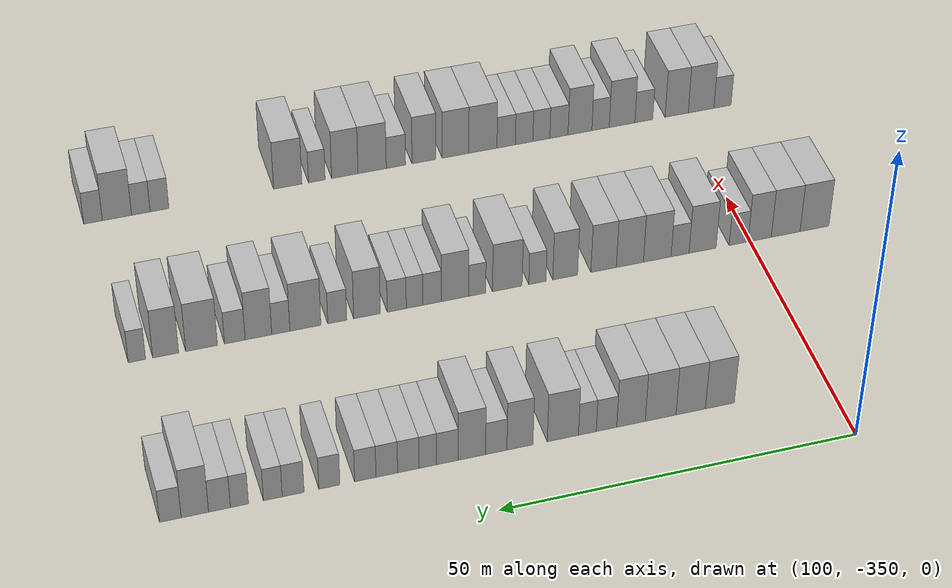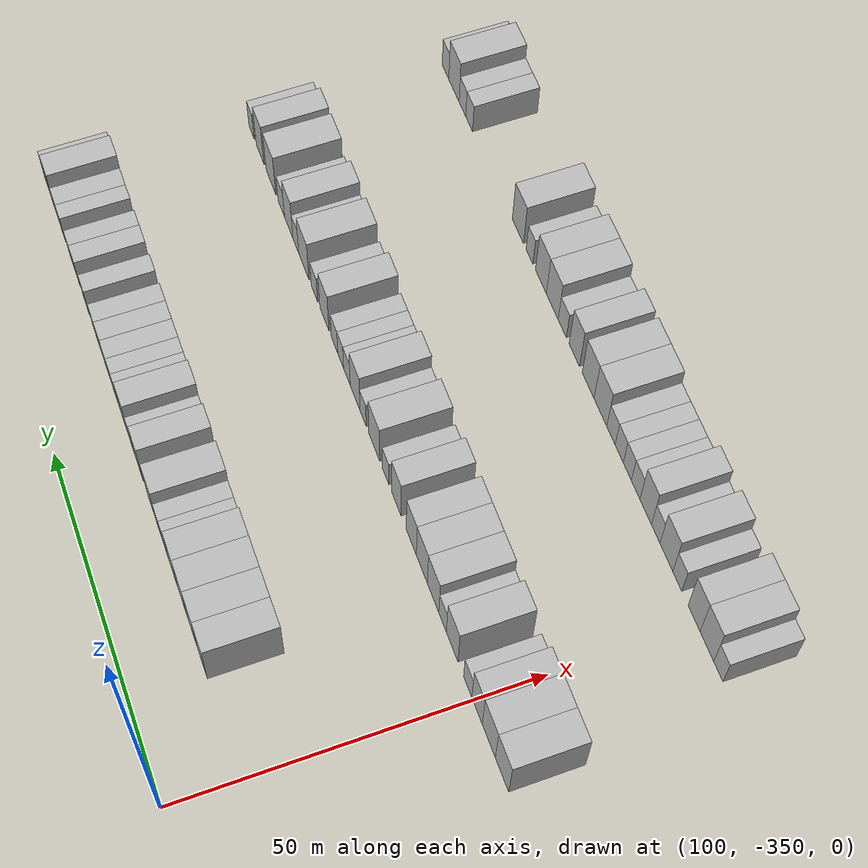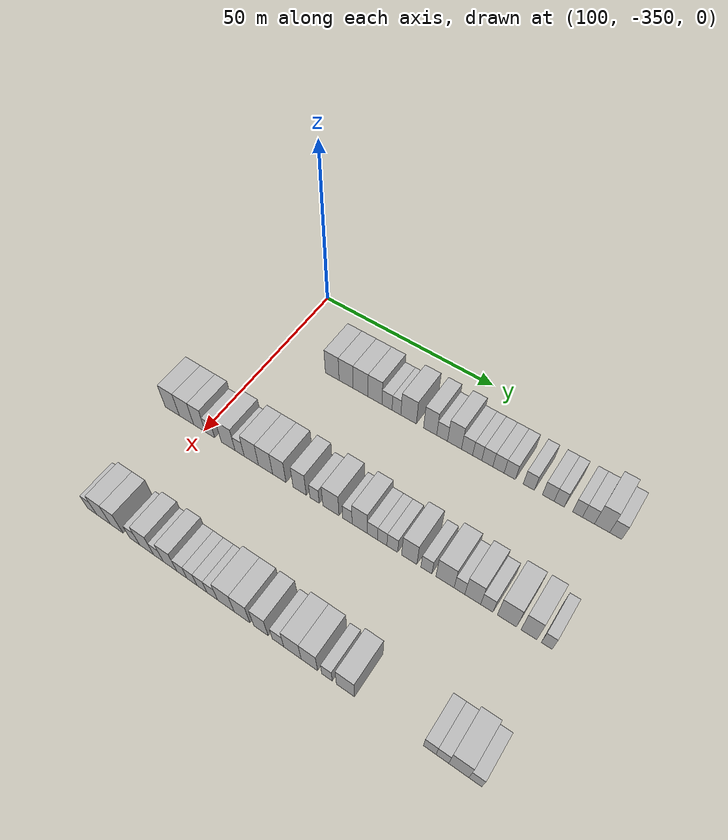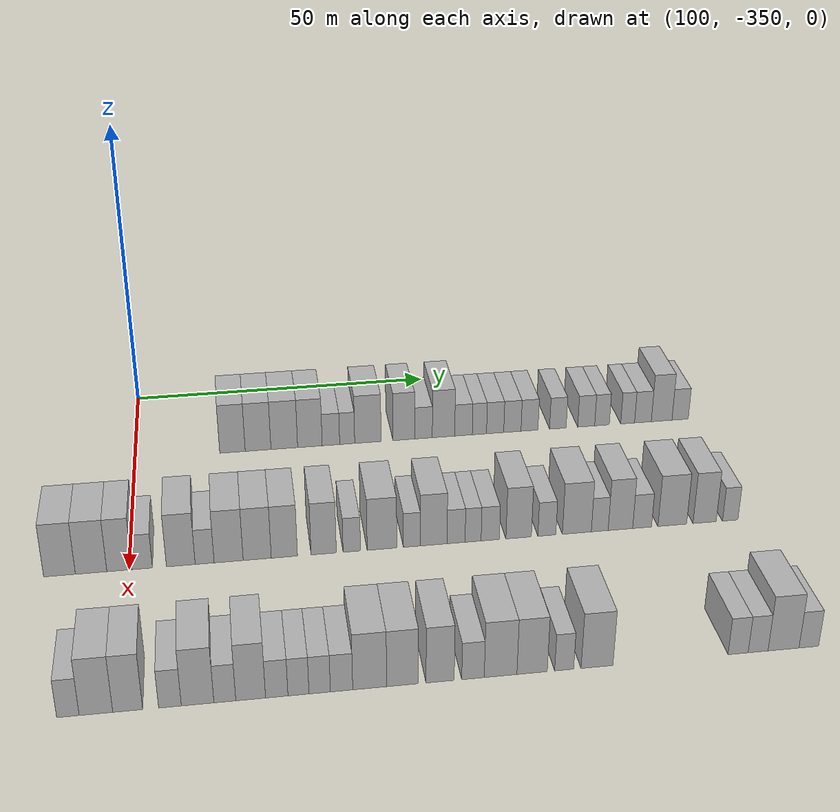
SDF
<sdf version="1.6">
 <world name="default">
  <model name="building_698">
   <static>1</static>
   <pose>115.0000 -334.2580 0 0.000000 0.000000 0.000000</pose>
   <link name="link">
    <pose>0 0 4.50 0 0 0</pose>
    <collision name="collision"><geometry><box><size>10.0000 4.1578 9.0000</size></box></geometry></collision>
    <visual name="visual">
     <cast_shadows>0</cast_shadows>
     <geometry><box><size>10.0000 4.1578 9.0000</size></box></geometry>
     <material>
      <script>
       <uri>model://HANNAS_wall/materials/scripts</uri>
       <uri>model://HANNAS_wall/materials/textures</uri>
       <name>vrc/HANNAS_wall</name>
      </script>
     </material>
    </visual>
   </link>
  </model>
  <model name="building_699">
   <static>1</static>
   <pose>115.0000 -330.0697 0 0.000000 0.000000 0.000000</pose>
   <link name="link">
    <pose>0 0 4.50 0 0 0</pose>
    <collision name="collision"><geometry><box><size>10.0000 4.2188 9.0000</size></box></geometry></collision>
    <visual name="visual">
     <cast_shadows>0</cast_shadows>
     <geometry><box><size>10.0000 4.2188 9.0000</size></box></geometry>
     <material>
      <script>
       <uri>model://HANNAS_wall/materials/scripts</uri>
       <uri>model://HANNAS_wall/materials/textures</uri>
       <name>vrc/HANNAS_wall</name>
      </script>
     </material>
    </visual>
   </link>
  </model>
  <model name="building_700">
   <static>1</static>
   <pose>115.0000 -325.7624 0 0.000000 0.000000 0.000000</pose>
   <link name="link">
    <pose>0 0 4.50 0 0 0</pose>
    <collision name="collision"><geometry><box><size>10.0000 4.3957 9.0000</size></box></geometry></collision>
    <visual name="visual">
     <cast_shadows>0</cast_shadows>
     <geometry><box><size>10.0000 4.3957 9.0000</size></box></geometry>
     <material>
      <script>
       <uri>model://HANNAS_wall/materials/scripts</uri>
       <uri>model://HANNAS_wall/materials/textures</uri>
       <name>vrc/HANNAS_wall</name>
      </script>
     </material>
    </visual>
   </link>
  </model>
  <model name="building_701">
   <static>1</static>
   <pose>115.0000 -321.5337 0 0.000000 0.000000 0.000000</pose>
   <link name="link">
    <pose>0 0 4.50 0 0 0</pose>
    <collision name="collision"><geometry><box><size>10.0000 4.0617 9.0000</size></box></geometry></collision>
    <visual name="visual">
     <cast_shadows>0</cast_shadows>
     <geometry><box><size>10.0000 4.0617 9.0000</size></box></geometry>
     <material>
      <script>
       <uri>model://HANNAS_wall/materials/scripts</uri>
       <uri>model://HANNAS_wall/materials/textures</uri>
       <name>vrc/HANNAS_wall</name>
      </script>
     </material>
    </visual>
   </link>
  </model>
  <model name="building_702">
   <static>1</static>
   <pose>115.0000 -318.0534 0 0.000000 0.000000 0.000000</pose>
   <link name="link">
    <pose>0 0 3.00 0 0 0</pose>
    <collision name="collision"><geometry><box><size>10.0000 2.8989 6.0000</size></box></geometry></collision>
    <visual name="visual">
     <cast_shadows>0</cast_shadows>
     <geometry><box><size>10.0000 2.8989 6.0000</size></box></geometry>
     <material>
      <script>
       <uri>model://HANNAS_wall/materials/scripts</uri>
       <uri>model://HANNAS_wall/materials/textures</uri>
       <name>vrc/HANNAS_wall</name>
      </script>
     </material>
    </visual>
   </link>
  </model>
  <model name="building_703">
   <static>1</static>
   <pose>115.0000 -315.3521 0 0.000000 0.000000 0.000000</pose>
   <link name="link">
    <pose>0 0 3.00 0 0 0</pose>
    <collision name="collision"><geometry><box><size>10.0000 2.5036 6.0000</size></box></geometry></collision>
    <visual name="visual">
     <cast_shadows>0</cast_shadows>
     <geometry><box><size>10.0000 2.5036 6.0000</size></box></geometry>
     <material>
      <script>
       <uri>model://HANNAS_wall/materials/scripts</uri>
       <uri>model://HANNAS_wall/materials/textures</uri>
       <name>vrc/HANNAS_wall</name>
      </script>
     </material>
    </visual>
   </link>
  </model>
  <model name="building_704">
   <static>1</static>
   <pose>115.0000 -311.8989 0 0.000000 0.000000 0.000000</pose>
   <link name="link">
    <pose>0 0 4.50 0 0 0</pose>
    <collision name="collision"><geometry><box><size>10.0000 4.4030 9.0000</size></box></geometry></collision>
    <visual name="visual">
     <cast_shadows>0</cast_shadows>
     <geometry><box><size>10.0000 4.4030 9.0000</size></box></geometry>
     <material>
      <script>
       <uri>model://HANNAS_wall/materials/scripts</uri>
       <uri>model://HANNAS_wall/materials/textures</uri>
       <name>vrc/HANNAS_wall</name>
      </script>
     </material>
    </visual>
   </link>
  </model>
  <model name="building_705">
   <static>1</static>
   <pose>115.0000 -305.8780 0 0.000000 0.000000 0.000000</pose>
   <link name="link">
    <pose>0 0 4.50 0 0 0</pose>
    <collision name="collision"><geometry><box><size>10.0000 3.6387 9.0000</size></box></geometry></collision>
    <visual name="visual">
     <cast_shadows>0</cast_shadows>
     <geometry><box><size>10.0000 3.6387 9.0000</size></box></geometry>
     <material>
      <script>
       <uri>model://HANNAS_wall/materials/scripts</uri>
       <uri>model://HANNAS_wall/materials/textures</uri>
       <name>vrc/HANNAS_wall</name>
      </script>
     </material>
    </visual>
   </link>
  </model>
  <model name="building_706">
   <static>1</static>
   <pose>115.0000 -302.5745 0 0.000000 0.000000 0.000000</pose>
   <link name="link">
    <pose>0 0 3.00 0 0 0</pose>
    <collision name="collision"><geometry><box><size>10.0000 2.9683 6.0000</size></box></geometry></collision>
    <visual name="visual">
     <cast_shadows>0</cast_shadows>
     <geometry><box><size>10.0000 2.9683 6.0000</size></box></geometry>
     <material>
      <script>
       <uri>model://HANNAS_wall/materials/scripts</uri>
       <uri>model://HANNAS_wall/materials/textures</uri>
       <name>vrc/HANNAS_wall</name>
      </script>
     </material>
    </visual>
   </link>
  </model>
  <model name="building_707">
   <static>1</static>
   <pose>115.0000 -299.1953 0 0.000000 0.000000 0.000000</pose>
   <link name="link">
    <pose>0 0 4.50 0 0 0</pose>
    <collision name="collision"><geometry><box><size>10.0000 3.7900 9.0000</size></box></geometry></collision>
    <visual name="visual">
     <cast_shadows>0</cast_shadows>
     <geometry><box><size>10.0000 3.7900 9.0000</size></box></geometry>
     <material>
      <script>
       <uri>model://HANNAS_wall/materials/scripts</uri>
       <uri>model://HANNAS_wall/materials/textures</uri>
       <name>vrc/HANNAS_wall</name>
      </script>
     </material>
    </visual>
   </link>
  </model>
  <model name="building_708">
   <static>1</static>
   <pose>115.0000 -295.8078 0 0.000000 0.000000 0.000000</pose>
   <link name="link">
    <pose>0 0 3.00 0 0 0</pose>
    <collision name="collision"><geometry><box><size>10.0000 2.9851 6.0000</size></box></geometry></collision>
    <visual name="visual">
     <cast_shadows>0</cast_shadows>
     <geometry><box><size>10.0000 2.9851 6.0000</size></box></geometry>
     <material>
      <script>
       <uri>model://HANNAS_wall/materials/scripts</uri>
       <uri>model://HANNAS_wall/materials/textures</uri>
       <name>vrc/HANNAS_wall</name>
      </script>
     </material>
    </visual>
   </link>
  </model>
  <model name="building_709">
   <static>1</static>
   <pose>115.0000 -293.1052 0 0.000000 0.000000 0.000000</pose>
   <link name="link">
    <pose>0 0 3.00 0 0 0</pose>
    <collision name="collision"><geometry><box><size>10.0000 2.4202 6.0000</size></box></geometry></collision>
    <visual name="visual">
     <cast_shadows>0</cast_shadows>
     <geometry><box><size>10.0000 2.4202 6.0000</size></box></geometry>
     <material>
      <script>
       <uri>model://HANNAS_wall/materials/scripts</uri>
       <uri>model://HANNAS_wall/materials/textures</uri>
       <name>vrc/HANNAS_wall</name>
      </script>
     </material>
    </visual>
   </link>
  </model>
  <model name="building_710">
   <static>1</static>
   <pose>115.0000 -290.4265 0 0.000000 0.000000 0.000000</pose>
   <link name="link">
    <pose>0 0 3.00 0 0 0</pose>
    <collision name="collision"><geometry><box><size>10.0000 2.9371 6.0000</size></box></geometry></collision>
    <visual name="visual">
     <cast_shadows>0</cast_shadows>
     <geometry><box><size>10.0000 2.9371 6.0000</size></box></geometry>
     <material>
      <script>
       <uri>model://HANNAS_wall/materials/scripts</uri>
       <uri>model://HANNAS_wall/materials/textures</uri>
       <name>vrc/HANNAS_wall</name>
      </script>
     </material>
    </visual>
   </link>
  </model>
  <model name="building_711">
   <static>1</static>
   <pose>115.0000 -287.4806 0 0.000000 0.000000 0.000000</pose>
   <link name="link">
    <pose>0 0 3.00 0 0 0</pose>
    <collision name="collision"><geometry><box><size>10.0000 2.9548 6.0000</size></box></geometry></collision>
    <visual name="visual">
     <cast_shadows>0</cast_shadows>
     <geometry><box><size>10.0000 2.9548 6.0000</size></box></geometry>
     <material>
      <script>
       <uri>model://HANNAS_wall/materials/scripts</uri>
       <uri>model://HANNAS_wall/materials/textures</uri>
       <name>vrc/HANNAS_wall</name>
      </script>
     </material>
    </visual>
   </link>
  </model>
  <model name="building_712">
   <static>1</static>
   <pose>115.0000 -284.5492 0 0.000000 0.000000 0.000000</pose>
   <link name="link">
    <pose>0 0 3.00 0 0 0</pose>
    <collision name="collision"><geometry><box><size>10.0000 2.9080 6.0000</size></box></geometry></collision>
    <visual name="visual">
     <cast_shadows>0</cast_shadows>
     <geometry><box><size>10.0000 2.9080 6.0000</size></box></geometry>
     <material>
      <script>
       <uri>model://HANNAS_wall/materials/scripts</uri>
       <uri>model://HANNAS_wall/materials/textures</uri>
       <name>vrc/HANNAS_wall</name>
      </script>
     </material>
    </visual>
   </link>
  </model>
  <model name="building_713">
   <static>1</static>
   <pose>115.0000 -279.6679 0 0.000000 0.000000 0.000000</pose>
   <link name="link">
    <pose>0 0 3.00 0 0 0</pose>
    <collision name="collision"><geometry><box><size>10.0000 2.8546 6.0000</size></box></geometry></collision>
    <visual name="visual">
     <cast_shadows>0</cast_shadows>
     <geometry><box><size>10.0000 2.8546 6.0000</size></box></geometry>
     <material>
      <script>
       <uri>model://HANNAS_wall/materials/scripts</uri>
       <uri>model://HANNAS_wall/materials/textures</uri>
       <name>vrc/HANNAS_wall</name>
      </script>
     </material>
    </visual>
   </link>
  </model>
  <model name="building_714">
   <static>1</static>
   <pose>115.0000 -274.7722 0 0.000000 0.000000 0.000000</pose>
   <link name="link">
    <pose>0 0 3.00 0 0 0</pose>
    <collision name="collision"><geometry><box><size>10.0000 2.9367 6.0000</size></box></geometry></collision>
    <visual name="visual">
     <cast_shadows>0</cast_shadows>
     <geometry><box><size>10.0000 2.9367 6.0000</size></box></geometry>
     <material>
      <script>
       <uri>model://HANNAS_wall/materials/scripts</uri>
       <uri>model://HANNAS_wall/materials/textures</uri>
       <name>vrc/HANNAS_wall</name>
      </script>
     </material>
    </visual>
   </link>
  </model>
  <model name="building_715">
   <static>1</static>
   <pose>115.0000 -272.0364 0 0.000000 0.000000 0.000000</pose>
   <link name="link">
    <pose>0 0 3.00 0 0 0</pose>
    <collision name="collision"><geometry><box><size>10.0000 2.5350 6.0000</size></box></geometry></collision>
    <visual name="visual">
     <cast_shadows>0</cast_shadows>
     <geometry><box><size>10.0000 2.5350 6.0000</size></box></geometry>
     <material>
      <script>
       <uri>model://HANNAS_wall/materials/scripts</uri>
       <uri>model://HANNAS_wall/materials/textures</uri>
       <name>vrc/HANNAS_wall</name>
      </script>
     </material>
    </visual>
   </link>
  </model>
  <model name="building_716">
   <static>1</static>
   <pose>115.0000 -267.5622 0 0.000000 0.000000 0.000000</pose>
   <link name="link">
    <pose>0 0 3.00 0 0 0</pose>
    <collision name="collision"><geometry><box><size>10.0000 2.4132 6.0000</size></box></geometry></collision>
    <visual name="visual">
     <cast_shadows>0</cast_shadows>
     <geometry><box><size>10.0000 2.4132 6.0000</size></box></geometry>
     <material>
      <script>
       <uri>model://HANNAS_wall/materials/scripts</uri>
       <uri>model://HANNAS_wall/materials/textures</uri>
       <name>vrc/HANNAS_wall</name>
      </script>
     </material>
    </visual>
   </link>
  </model>
  <model name="building_717">
   <static>1</static>
   <pose>115.0000 -264.8956 0 0.000000 0.000000 0.000000</pose>
   <link name="link">
    <pose>0 0 3.00 0 0 0</pose>
    <collision name="collision"><geometry><box><size>10.0000 2.9200 6.0000</size></box></geometry></collision>
    <visual name="visual">
     <cast_shadows>0</cast_shadows>
     <geometry><box><size>10.0000 2.9200 6.0000</size></box></geometry>
     <material>
      <script>
       <uri>model://HANNAS_wall/materials/scripts</uri>
       <uri>model://HANNAS_wall/materials/textures</uri>
       <name>vrc/HANNAS_wall</name>
      </script>
     </material>
    </visual>
   </link>
  </model>
  <model name="building_718">
   <static>1</static>
   <pose>115.0000 -261.6187 0 0.000000 0.000000 0.000000</pose>
   <link name="link">
    <pose>0 0 4.50 0 0 0</pose>
    <collision name="collision"><geometry><box><size>10.0000 3.6339 9.0000</size></box></geometry></collision>
    <visual name="visual">
     <cast_shadows>0</cast_shadows>
     <geometry><box><size>10.0000 3.6339 9.0000</size></box></geometry>
     <material>
      <script>
       <uri>model://HANNAS_wall/materials/scripts</uri>
       <uri>model://HANNAS_wall/materials/textures</uri>
       <name>vrc/HANNAS_wall</name>
      </script>
     </material>
    </visual>
   </link>
  </model>
  <model name="building_719">
   <static>1</static>
   <pose>115.0000 -258.3656 0 0.000000 0.000000 0.000000</pose>
   <link name="link">
    <pose>0 0 3.00 0 0 0</pose>
    <collision name="collision"><geometry><box><size>10.0000 2.8724 6.0000</size></box></geometry></collision>
    <visual name="visual">
     <cast_shadows>0</cast_shadows>
     <geometry><box><size>10.0000 2.8724 6.0000</size></box></geometry>
     <material>
      <script>
       <uri>model://HANNAS_wall/materials/scripts</uri>
       <uri>model://HANNAS_wall/materials/textures</uri>
       <name>vrc/HANNAS_wall</name>
      </script>
     </material>
    </visual>
   </link>
  </model>
  <model name="building_926">
   <static>1</static>
   <pose>145.0000 -359.9196 0 0.000000 0.000000 0.000000</pose>
   <link name="link">
    <pose>0 0 4.50 0 0 0</pose>
    <collision name="collision"><geometry><box><size>10.0000 4.4904 9.0000</size></box></geometry></collision>
    <visual name="visual">
     <cast_shadows>0</cast_shadows>
     <geometry><box><size>10.0000 4.4904 9.0000</size></box></geometry>
     <material>
      <script>
       <uri>model://HANNAS_wall/materials/scripts</uri>
       <uri>model://HANNAS_wall/materials/textures</uri>
       <name>vrc/HANNAS_wall</name>
      </script>
     </material>
    </visual>
   </link>
  </model>
  <model name="building_927">
   <static>1</static>
   <pose>145.0000 -355.4382 0 0.000000 0.000000 0.000000</pose>
   <link name="link">
    <pose>0 0 4.50 0 0 0</pose>
    <collision name="collision"><geometry><box><size>10.0000 4.4725 9.0000</size></box></geometry></collision>
    <visual name="visual">
     <cast_shadows>0</cast_shadows>
     <geometry><box><size>10.0000 4.4725 9.0000</size></box></geometry>
     <material>
      <script>
       <uri>model://HANNAS_wall/materials/scripts</uri>
       <uri>model://HANNAS_wall/materials/textures</uri>
       <name>vrc/HANNAS_wall</name>
      </script>
     </material>
    </visual>
   </link>
  </model>
  <model name="building_928">
   <static>1</static>
   <pose>145.0000 -351.4005 0 0.000000 0.000000 0.000000</pose>
   <link name="link">
    <pose>0 0 4.50 0 0 0</pose>
    <collision name="collision"><geometry><box><size>10.0000 3.6030 9.0000</size></box></geometry></collision>
    <visual name="visual">
     <cast_shadows>0</cast_shadows>
     <geometry><box><size>10.0000 3.6030 9.0000</size></box></geometry>
     <material>
      <script>
       <uri>model://HANNAS_wall/materials/scripts</uri>
       <uri>model://HANNAS_wall/materials/textures</uri>
       <name>vrc/HANNAS_wall</name>
      </script>
     </material>
    </visual>
   </link>
  </model>
  <model name="building_929">
   <static>1</static>
   <pose>145.0000 -348.1431 0 0.000000 0.000000 0.000000</pose>
   <link name="link">
    <pose>0 0 3.00 0 0 0</pose>
    <collision name="collision"><geometry><box><size>10.0000 2.9117 6.0000</size></box></geometry></collision>
    <visual name="visual">
     <cast_shadows>0</cast_shadows>
     <geometry><box><size>10.0000 2.9117 6.0000</size></box></geometry>
     <material>
      <script>
       <uri>model://HANNAS_wall/materials/scripts</uri>
       <uri>model://HANNAS_wall/materials/textures</uri>
       <name>vrc/HANNAS_wall</name>
      </script>
     </material>
    </visual>
   </link>
  </model>
  <model name="building_930">
   <static>1</static>
   <pose>145.0000 -342.6119 0 0.000000 0.000000 0.000000</pose>
   <link name="link">
    <pose>0 0 4.50 0 0 0</pose>
    <collision name="collision"><geometry><box><size>10.0000 4.1508 9.0000</size></box></geometry></collision>
    <visual name="visual">
     <cast_shadows>0</cast_shadows>
     <geometry><box><size>10.0000 4.1508 9.0000</size></box></geometry>
     <material>
      <script>
       <uri>model://HANNAS_wall/materials/scripts</uri>
       <uri>model://HANNAS_wall/materials/textures</uri>
       <name>vrc/HANNAS_wall</name>
      </script>
     </material>
    </visual>
   </link>
  </model>
  <model name="building_931">
   <static>1</static>
   <pose>145.0000 -339.1695 0 0.000000 0.000000 0.000000</pose>
   <link name="link">
    <pose>0 0 3.00 0 0 0</pose>
    <collision name="collision"><geometry><box><size>10.0000 2.7339 6.0000</size></box></geometry></collision>
    <visual name="visual">
     <cast_shadows>0</cast_shadows>
     <geometry><box><size>10.0000 2.7339 6.0000</size></box></geometry>
     <material>
      <script>
       <uri>model://HANNAS_wall/materials/scripts</uri>
       <uri>model://HANNAS_wall/materials/textures</uri>
       <name>vrc/HANNAS_wall</name>
      </script>
     </material>
    </visual>
   </link>
  </model>
  <model name="building_932">
   <static>1</static>
   <pose>145.0000 -335.6919 0 0.000000 0.000000 0.000000</pose>
   <link name="link">
    <pose>0 0 4.50 0 0 0</pose>
    <collision name="collision"><geometry><box><size>10.0000 4.2213 9.0000</size></box></geometry></collision>
    <visual name="visual">
     <cast_shadows>0</cast_shadows>
     <geometry><box><size>10.0000 4.2213 9.0000</size></box></geometry>
     <material>
      <script>
       <uri>model://HANNAS_wall/materials/scripts</uri>
       <uri>model://HANNAS_wall/materials/textures</uri>
       <name>vrc/HANNAS_wall</name>
      </script>
     </material>
    </visual>
   </link>
  </model>
  <model name="building_933">
   <static>1</static>
   <pose>145.0000 -331.5318 0 0.000000 0.000000 0.000000</pose>
   <link name="link">
    <pose>0 0 4.50 0 0 0</pose>
    <collision name="collision"><geometry><box><size>10.0000 4.0988 9.0000</size></box></geometry></collision>
    <visual name="visual">
     <cast_shadows>0</cast_shadows>
     <geometry><box><size>10.0000 4.0988 9.0000</size></box></geometry>
     <material>
      <script>
       <uri>model://HANNAS_wall/materials/scripts</uri>
       <uri>model://HANNAS_wall/materials/textures</uri>
       <name>vrc/HANNAS_wall</name>
      </script>
     </material>
    </visual>
   </link>
  </model>
  <model name="building_934">
   <static>1</static>
   <pose>145.0000 -327.5603 0 0.000000 0.000000 0.000000</pose>
   <link name="link">
    <pose>0 0 4.50 0 0 0</pose>
    <collision name="collision"><geometry><box><size>10.0000 3.8443 9.0000</size></box></geometry></collision>
    <visual name="visual">
     <cast_shadows>0</cast_shadows>
     <geometry><box><size>10.0000 3.8443 9.0000</size></box></geometry>
     <material>
      <script>
       <uri>model://HANNAS_wall/materials/scripts</uri>
       <uri>model://HANNAS_wall/materials/textures</uri>
       <name>vrc/HANNAS_wall</name>
      </script>
     </material>
    </visual>
   </link>
  </model>
  <model name="building_935">
   <static>1</static>
   <pose>145.0000 -321.7759 0 0.000000 0.000000 0.000000</pose>
   <link name="link">
    <pose>0 0 4.50 0 0 0</pose>
    <collision name="collision"><geometry><box><size>10.0000 3.7245 9.0000</size></box></geometry></collision>
    <visual name="visual">
     <cast_shadows>0</cast_shadows>
     <geometry><box><size>10.0000 3.7245 9.0000</size></box></geometry>
     <material>
      <script>
       <uri>model://HANNAS_wall/materials/scripts</uri>
       <uri>model://HANNAS_wall/materials/textures</uri>
       <name>vrc/HANNAS_wall</name>
      </script>
     </material>
    </visual>
   </link>
  </model>
  <model name="building_936">
   <static>1</static>
   <pose>145.0000 -317.6257 0 0.000000 0.000000 0.000000</pose>
   <link name="link">
    <pose>0 0 3.00 0 0 0</pose>
    <collision name="collision"><geometry><box><size>10.0000 2.5757 6.0000</size></box></geometry></collision>
    <visual name="visual">
     <cast_shadows>0</cast_shadows>
     <geometry><box><size>10.0000 2.5757 6.0000</size></box></geometry>
     <material>
      <script>
       <uri>model://HANNAS_wall/materials/scripts</uri>
       <uri>model://HANNAS_wall/materials/textures</uri>
       <name>vrc/HANNAS_wall</name>
      </script>
     </material>
    </visual>
   </link>
  </model>
  <model name="building_937">
   <static>1</static>
   <pose>145.0000 -313.1358 0 0.000000 0.000000 0.000000</pose>
   <link name="link">
    <pose>0 0 4.50 0 0 0</pose>
    <collision name="collision"><geometry><box><size>10.0000 4.4043 9.0000</size></box></geometry></collision>
    <visual name="visual">
     <cast_shadows>0</cast_shadows>
     <geometry><box><size>10.0000 4.4043 9.0000</size></box></geometry>
     <material>
      <script>
       <uri>model://HANNAS_wall/materials/scripts</uri>
       <uri>model://HANNAS_wall/materials/textures</uri>
       <name>vrc/HANNAS_wall</name>
      </script>
     </material>
    </visual>
   </link>
  </model>
  <model name="building_938">
   <static>1</static>
   <pose>145.0000 -308.6746 0 0.000000 0.000000 0.000000</pose>
   <link name="link">
    <pose>0 0 3.00 0 0 0</pose>
    <collision name="collision"><geometry><box><size>10.0000 2.5181 6.0000</size></box></geometry></collision>
    <visual name="visual">
     <cast_shadows>0</cast_shadows>
     <geometry><box><size>10.0000 2.5181 6.0000</size></box></geometry>
     <material>
      <script>
       <uri>model://HANNAS_wall/materials/scripts</uri>
       <uri>model://HANNAS_wall/materials/textures</uri>
       <name>vrc/HANNAS_wall</name>
      </script>
     </material>
    </visual>
   </link>
  </model>
  <model name="building_939">
   <static>1</static>
   <pose>145.0000 -305.4057 0 0.000000 0.000000 0.000000</pose>
   <link name="link">
    <pose>0 0 4.50 0 0 0</pose>
    <collision name="collision"><geometry><box><size>10.0000 4.0196 9.0000</size></box></geometry></collision>
    <visual name="visual">
     <cast_shadows>0</cast_shadows>
     <geometry><box><size>10.0000 4.0196 9.0000</size></box></geometry>
     <material>
      <script>
       <uri>model://HANNAS_wall/materials/scripts</uri>
       <uri>model://HANNAS_wall/materials/textures</uri>
       <name>vrc/HANNAS_wall</name>
      </script>
     </material>
    </visual>
   </link>
  </model>
  <model name="building_940">
   <static>1</static>
   <pose>145.0000 -302.0346 0 0.000000 0.000000 0.000000</pose>
   <link name="link">
    <pose>0 0 3.00 0 0 0</pose>
    <collision name="collision"><geometry><box><size>10.0000 2.7227 6.0000</size></box></geometry></collision>
    <visual name="visual">
     <cast_shadows>0</cast_shadows>
     <geometry><box><size>10.0000 2.7227 6.0000</size></box></geometry>
     <material>
      <script>
       <uri>model://HANNAS_wall/materials/scripts</uri>
       <uri>model://HANNAS_wall/materials/textures</uri>
       <name>vrc/HANNAS_wall</name>
      </script>
     </material>
    </visual>
   </link>
  </model>
  <model name="building_941">
   <static>1</static>
   <pose>145.0000 -299.4622 0 0.000000 0.000000 0.000000</pose>
   <link name="link">
    <pose>0 0 3.00 0 0 0</pose>
    <collision name="collision"><geometry><box><size>10.0000 2.4220 6.0000</size></box></geometry></collision>
    <visual name="visual">
     <cast_shadows>0</cast_shadows>
     <geometry><box><size>10.0000 2.4220 6.0000</size></box></geometry>
     <material>
      <script>
       <uri>model://HANNAS_wall/materials/scripts</uri>
       <uri>model://HANNAS_wall/materials/textures</uri>
       <name>vrc/HANNAS_wall</name>
      </script>
     </material>
    </visual>
   </link>
  </model>
  <model name="building_942">
   <static>1</static>
   <pose>145.0000 -296.8647 0 0.000000 0.000000 0.000000</pose>
   <link name="link">
    <pose>0 0 3.00 0 0 0</pose>
    <collision name="collision"><geometry><box><size>10.0000 2.7730 6.0000</size></box></geometry></collision>
    <visual name="visual">
     <cast_shadows>0</cast_shadows>
     <geometry><box><size>10.0000 2.7730 6.0000</size></box></geometry>
     <material>
      <script>
       <uri>model://HANNAS_wall/materials/scripts</uri>
       <uri>model://HANNAS_wall/materials/textures</uri>
       <name>vrc/HANNAS_wall</name>
      </script>
     </material>
    </visual>
   </link>
  </model>
  <model name="building_943">
   <static>1</static>
   <pose>145.0000 -292.5413 0 0.000000 0.000000 0.000000</pose>
   <link name="link">
    <pose>0 0 4.50 0 0 0</pose>
    <collision name="collision"><geometry><box><size>10.0000 3.8739 9.0000</size></box></geometry></collision>
    <visual name="visual">
     <cast_shadows>0</cast_shadows>
     <geometry><box><size>10.0000 3.8739 9.0000</size></box></geometry>
     <material>
      <script>
       <uri>model://HANNAS_wall/materials/scripts</uri>
       <uri>model://HANNAS_wall/materials/textures</uri>
       <name>vrc/HANNAS_wall</name>
      </script>
     </material>
    </visual>
   </link>
  </model>
  <model name="building_944">
   <static>1</static>
   <pose>145.0000 -288.2293 0 0.000000 0.000000 0.000000</pose>
   <link name="link">
    <pose>0 0 3.00 0 0 0</pose>
    <collision name="collision"><geometry><box><size>10.0000 2.7500 6.0000</size></box></geometry></collision>
    <visual name="visual">
     <cast_shadows>0</cast_shadows>
     <geometry><box><size>10.0000 2.7500 6.0000</size></box></geometry>
     <material>
      <script>
       <uri>model://HANNAS_wall/materials/scripts</uri>
       <uri>model://HANNAS_wall/materials/textures</uri>
       <name>vrc/HANNAS_wall</name>
      </script>
     </material>
    </visual>
   </link>
  </model>
  <model name="building_945">
   <static>1</static>
   <pose>145.0000 -283.6245 0 0.000000 0.000000 0.000000</pose>
   <link name="link">
    <pose>0 0 4.50 0 0 0</pose>
    <collision name="collision"><geometry><box><size>10.0000 4.4596 9.0000</size></box></geometry></collision>
    <visual name="visual">
     <cast_shadows>0</cast_shadows>
     <geometry><box><size>10.0000 4.4596 9.0000</size></box></geometry>
     <material>
      <script>
       <uri>model://HANNAS_wall/materials/scripts</uri>
       <uri>model://HANNAS_wall/materials/textures</uri>
       <name>vrc/HANNAS_wall</name>
      </script>
     </material>
    </visual>
   </link>
  </model>
  <model name="building_946">
   <static>1</static>
   <pose>145.0000 -280.0947 0 0.000000 0.000000 0.000000</pose>
   <link name="link">
    <pose>0 0 3.00 0 0 0</pose>
    <collision name="collision"><geometry><box><size>10.0000 2.6000 6.0000</size></box></geometry></collision>
    <visual name="visual">
     <cast_shadows>0</cast_shadows>
     <geometry><box><size>10.0000 2.6000 6.0000</size></box></geometry>
     <material>
      <script>
       <uri>model://HANNAS_wall/materials/scripts</uri>
       <uri>model://HANNAS_wall/materials/textures</uri>
       <name>vrc/HANNAS_wall</name>
      </script>
     </material>
    </visual>
   </link>
  </model>
  <model name="building_947">
   <static>1</static>
   <pose>145.0000 -276.8909 0 0.000000 0.000000 0.000000</pose>
   <link name="link">
    <pose>0 0 4.50 0 0 0</pose>
    <collision name="collision"><geometry><box><size>10.0000 3.8075 9.0000</size></box></geometry></collision>
    <visual name="visual">
     <cast_shadows>0</cast_shadows>
     <geometry><box><size>10.0000 3.8075 9.0000</size></box></geometry>
     <material>
      <script>
       <uri>model://HANNAS_wall/materials/scripts</uri>
       <uri>model://HANNAS_wall/materials/textures</uri>
       <name>vrc/HANNAS_wall</name>
      </script>
     </material>
    </visual>
   </link>
  </model>
  <model name="building_948">
   <static>1</static>
   <pose>145.0000 -273.5193 0 0.000000 0.000000 0.000000</pose>
   <link name="link">
    <pose>0 0 3.00 0 0 0</pose>
    <collision name="collision"><geometry><box><size>10.0000 2.9357 6.0000</size></box></geometry></collision>
    <visual name="visual">
     <cast_shadows>0</cast_shadows>
     <geometry><box><size>10.0000 2.9357 6.0000</size></box></geometry>
     <material>
      <script>
       <uri>model://HANNAS_wall/materials/scripts</uri>
       <uri>model://HANNAS_wall/materials/textures</uri>
       <name>vrc/HANNAS_wall</name>
      </script>
     </material>
    </visual>
   </link>
  </model>
  <model name="building_949">
   <static>1</static>
   <pose>145.0000 -268.8044 0 0.000000 0.000000 0.000000</pose>
   <link name="link">
    <pose>0 0 4.50 0 0 0</pose>
    <collision name="collision"><geometry><box><size>10.0000 4.4941 9.0000</size></box></geometry></collision>
    <visual name="visual">
     <cast_shadows>0</cast_shadows>
     <geometry><box><size>10.0000 4.4941 9.0000</size></box></geometry>
     <material>
      <script>
       <uri>model://HANNAS_wall/materials/scripts</uri>
       <uri>model://HANNAS_wall/materials/textures</uri>
       <name>vrc/HANNAS_wall</name>
      </script>
     </material>
    </visual>
   </link>
  </model>
  <model name="building_950">
   <static>1</static>
   <pose>145.0000 -263.7333 0 0.000000 0.000000 0.000000</pose>
   <link name="link">
    <pose>0 0 4.50 0 0 0</pose>
    <collision name="collision"><geometry><box><size>10.0000 3.6482 9.0000</size></box></geometry></collision>
    <visual name="visual">
     <cast_shadows>0</cast_shadows>
     <geometry><box><size>10.0000 3.6482 9.0000</size></box></geometry>
     <material>
      <script>
       <uri>model://HANNAS_wall/materials/scripts</uri>
       <uri>model://HANNAS_wall/materials/textures</uri>
       <name>vrc/HANNAS_wall</name>
      </script>
     </material>
    </visual>
   </link>
  </model>
  <model name="building_951">
   <static>1</static>
   <pose>145.0000 -259.6914 0 0.000000 0.000000 0.000000</pose>
   <link name="link">
    <pose>0 0 3.00 0 0 0</pose>
    <collision name="collision"><geometry><box><size>10.0000 2.4356 6.0000</size></box></geometry></collision>
    <visual name="visual">
     <cast_shadows>0</cast_shadows>
     <geometry><box><size>10.0000 2.4356 6.0000</size></box></geometry>
     <material>
      <script>
       <uri>model://HANNAS_wall/materials/scripts</uri>
       <uri>model://HANNAS_wall/materials/textures</uri>
       <name>vrc/HANNAS_wall</name>
      </script>
     </material>
    </visual>
   </link>
  </model>
  <model name="building_1156">
   <static>1</static>
   <pose>175.0000 -356.6995 0 0.000000 0.000000 0.000000</pose>
   <link name="link">
    <pose>0 0 3.00 0 0 0</pose>
    <collision name="collision"><geometry><box><size>10.0000 2.7933 6.0000</size></box></geometry></collision>
    <visual name="visual">
     <cast_shadows>0</cast_shadows>
     <geometry><box><size>10.0000 2.7933 6.0000</size></box></geometry>
     <material>
      <script>
       <uri>model://HANNAS_wall/materials/scripts</uri>
       <uri>model://HANNAS_wall/materials/textures</uri>
       <name>vrc/HANNAS_wall</name>
      </script>
     </material>
    </visual>
   </link>
  </model>
  <model name="building_1157">
   <static>1</static>
   <pose>175.0000 -353.2098 0 0.000000 0.000000 0.000000</pose>
   <link name="link">
    <pose>0 0 4.50 0 0 0</pose>
    <collision name="collision"><geometry><box><size>10.0000 4.1860 9.0000</size></box></geometry></collision>
    <visual name="visual">
     <cast_shadows>0</cast_shadows>
     <geometry><box><size>10.0000 4.1860 9.0000</size></box></geometry>
     <material>
      <script>
       <uri>model://HANNAS_wall/materials/scripts</uri>
       <uri>model://HANNAS_wall/materials/textures</uri>
       <name>vrc/HANNAS_wall</name>
      </script>
     </material>
    </visual>
   </link>
  </model>
  <model name="building_1158">
   <static>1</static>
   <pose>175.0000 -349.2431 0 0.000000 0.000000 0.000000</pose>
   <link name="link">
    <pose>0 0 4.50 0 0 0</pose>
    <collision name="collision"><geometry><box><size>10.0000 3.7476 9.0000</size></box></geometry></collision>
    <visual name="visual">
     <cast_shadows>0</cast_shadows>
     <geometry><box><size>10.0000 3.7476 9.0000</size></box></geometry>
     <material>
      <script>
       <uri>model://HANNAS_wall/materials/scripts</uri>
       <uri>model://HANNAS_wall/materials/textures</uri>
       <name>vrc/HANNAS_wall</name>
      </script>
     </material>
    </visual>
   </link>
  </model>
  <model name="building_1159">
   <static>1</static>
   <pose>175.0000 -343.9394 0 0.000000 0.000000 0.000000</pose>
   <link name="link">
    <pose>0 0 3.00 0 0 0</pose>
    <collision name="collision"><geometry><box><size>10.0000 2.8599 6.0000</size></box></geometry></collision>
    <visual name="visual">
     <cast_shadows>0</cast_shadows>
     <geometry><box><size>10.0000 2.8599 6.0000</size></box></geometry>
     <material>
      <script>
       <uri>model://HANNAS_wall/materials/scripts</uri>
       <uri>model://HANNAS_wall/materials/textures</uri>
       <name>vrc/HANNAS_wall</name>
      </script>
     </material>
    </visual>
   </link>
  </model>
  <model name="building_1160">
   <static>1</static>
   <pose>175.0000 -340.4444 0 0.000000 0.000000 0.000000</pose>
   <link name="link">
    <pose>0 0 4.50 0 0 0</pose>
    <collision name="collision"><geometry><box><size>10.0000 4.1301 9.0000</size></box></geometry></collision>
    <visual name="visual">
     <cast_shadows>0</cast_shadows>
     <geometry><box><size>10.0000 4.1301 9.0000</size></box></geometry>
     <material>
      <script>
       <uri>model://HANNAS_wall/materials/scripts</uri>
       <uri>model://HANNAS_wall/materials/textures</uri>
       <name>vrc/HANNAS_wall</name>
      </script>
     </material>
    </visual>
   </link>
  </model>
  <model name="building_1161">
   <static>1</static>
   <pose>175.0000 -336.9885 0 0.000000 0.000000 0.000000</pose>
   <link name="link">
    <pose>0 0 3.00 0 0 0</pose>
    <collision name="collision"><geometry><box><size>10.0000 2.7816 6.0000</size></box></geometry></collision>
    <visual name="visual">
     <cast_shadows>0</cast_shadows>
     <geometry><box><size>10.0000 2.7816 6.0000</size></box></geometry>
     <material>
      <script>
       <uri>model://HANNAS_wall/materials/scripts</uri>
       <uri>model://HANNAS_wall/materials/textures</uri>
       <name>vrc/HANNAS_wall</name>
      </script>
     </material>
    </visual>
   </link>
  </model>
  <model name="building_1162">
   <static>1</static>
   <pose>175.0000 -333.6932 0 0.000000 0.000000 0.000000</pose>
   <link name="link">
    <pose>0 0 4.50 0 0 0</pose>
    <collision name="collision"><geometry><box><size>10.0000 3.8089 9.0000</size></box></geometry></collision>
    <visual name="visual">
     <cast_shadows>0</cast_shadows>
     <geometry><box><size>10.0000 3.8089 9.0000</size></box></geometry>
     <material>
      <script>
       <uri>model://HANNAS_wall/materials/scripts</uri>
       <uri>model://HANNAS_wall/materials/textures</uri>
       <name>vrc/HANNAS_wall</name>
      </script>
     </material>
    </visual>
   </link>
  </model>
  <model name="building_1163">
   <static>1</static>
   <pose>175.0000 -330.3521 0 0.000000 0.000000 0.000000</pose>
   <link name="link">
    <pose>0 0 3.00 0 0 0</pose>
    <collision name="collision"><geometry><box><size>10.0000 2.8733 6.0000</size></box></geometry></collision>
    <visual name="visual">
     <cast_shadows>0</cast_shadows>
     <geometry><box><size>10.0000 2.8733 6.0000</size></box></geometry>
     <material>
      <script>
       <uri>model://HANNAS_wall/materials/scripts</uri>
       <uri>model://HANNAS_wall/materials/textures</uri>
       <name>vrc/HANNAS_wall</name>
      </script>
     </material>
    </visual>
   </link>
  </model>
  <model name="building_1164">
   <static>1</static>
   <pose>175.0000 -327.5625 0 0.000000 0.000000 0.000000</pose>
   <link name="link">
    <pose>0 0 3.00 0 0 0</pose>
    <collision name="collision"><geometry><box><size>10.0000 2.7060 6.0000</size></box></geometry></collision>
    <visual name="visual">
     <cast_shadows>0</cast_shadows>
     <geometry><box><size>10.0000 2.7060 6.0000</size></box></geometry>
     <material>
      <script>
       <uri>model://HANNAS_wall/materials/scripts</uri>
       <uri>model://HANNAS_wall/materials/textures</uri>
       <name>vrc/HANNAS_wall</name>
      </script>
     </material>
    </visual>
   </link>
  </model>
  <model name="building_1165">
   <static>1</static>
   <pose>175.0000 -324.8243 0 0.000000 0.000000 0.000000</pose>
   <link name="link">
    <pose>0 0 3.00 0 0 0</pose>
    <collision name="collision"><geometry><box><size>10.0000 2.7703 6.0000</size></box></geometry></collision>
    <visual name="visual">
     <cast_shadows>0</cast_shadows>
     <geometry><box><size>10.0000 2.7703 6.0000</size></box></geometry>
     <material>
      <script>
       <uri>model://HANNAS_wall/materials/scripts</uri>
       <uri>model://HANNAS_wall/materials/textures</uri>
       <name>vrc/HANNAS_wall</name>
      </script>
     </material>
    </visual>
   </link>
  </model>
  <model name="building_1166">
   <static>1</static>
   <pose>175.0000 -321.9907 0 0.000000 0.000000 0.000000</pose>
   <link name="link">
    <pose>0 0 3.00 0 0 0</pose>
    <collision name="collision"><geometry><box><size>10.0000 2.8971 6.0000</size></box></geometry></collision>
    <visual name="visual">
     <cast_shadows>0</cast_shadows>
     <geometry><box><size>10.0000 2.8971 6.0000</size></box></geometry>
     <material>
      <script>
       <uri>model://HANNAS_wall/materials/scripts</uri>
       <uri>model://HANNAS_wall/materials/textures</uri>
       <name>vrc/HANNAS_wall</name>
      </script>
     </material>
    </visual>
   </link>
  </model>
  <model name="building_1167">
   <static>1</static>
   <pose>175.0000 -318.3294 0 0.000000 0.000000 0.000000</pose>
   <link name="link">
    <pose>0 0 4.50 0 0 0</pose>
    <collision name="collision"><geometry><box><size>10.0000 4.4255 9.0000</size></box></geometry></collision>
    <visual name="visual">
     <cast_shadows>0</cast_shadows>
     <geometry><box><size>10.0000 4.4255 9.0000</size></box></geometry>
     <material>
      <script>
       <uri>model://HANNAS_wall/materials/scripts</uri>
       <uri>model://HANNAS_wall/materials/textures</uri>
       <name>vrc/HANNAS_wall</name>
      </script>
     </material>
    </visual>
   </link>
  </model>
  <model name="building_1168">
   <static>1</static>
   <pose>175.0000 -314.0362 0 0.000000 0.000000 0.000000</pose>
   <link name="link">
    <pose>0 0 4.50 0 0 0</pose>
    <collision name="collision"><geometry><box><size>10.0000 4.1608 9.0000</size></box></geometry></collision>
    <visual name="visual">
     <cast_shadows>0</cast_shadows>
     <geometry><box><size>10.0000 4.1608 9.0000</size></box></geometry>
     <material>
      <script>
       <uri>model://HANNAS_wall/materials/scripts</uri>
       <uri>model://HANNAS_wall/materials/textures</uri>
       <name>vrc/HANNAS_wall</name>
      </script>
     </material>
    </visual>
   </link>
  </model>
  <model name="building_1169">
   <static>1</static>
   <pose>175.0000 -309.1001 0 0.000000 0.000000 0.000000</pose>
   <link name="link">
    <pose>0 0 4.50 0 0 0</pose>
    <collision name="collision"><geometry><box><size>10.0000 3.7116 9.0000</size></box></geometry></collision>
    <visual name="visual">
     <cast_shadows>0</cast_shadows>
     <geometry><box><size>10.0000 3.7116 9.0000</size></box></geometry>
     <material>
      <script>
       <uri>model://HANNAS_wall/materials/scripts</uri>
       <uri>model://HANNAS_wall/materials/textures</uri>
       <name>vrc/HANNAS_wall</name>
      </script>
     </material>
    </visual>
   </link>
  </model>
  <model name="building_1170">
   <static>1</static>
   <pose>175.0000 -304.7527 0 0.000000 0.000000 0.000000</pose>
   <link name="link">
    <pose>0 0 3.00 0 0 0</pose>
    <collision name="collision"><geometry><box><size>10.0000 2.9831 6.0000</size></box></geometry></collision>
    <visual name="visual">
     <cast_shadows>0</cast_shadows>
     <geometry><box><size>10.0000 2.9831 6.0000</size></box></geometry>
     <material>
      <script>
       <uri>model://HANNAS_wall/materials/scripts</uri>
       <uri>model://HANNAS_wall/materials/textures</uri>
       <name>vrc/HANNAS_wall</name>
      </script>
     </material>
    </visual>
   </link>
  </model>
  <model name="building_1171">
   <static>1</static>
   <pose>175.0000 -301.0838 0 0.000000 0.000000 0.000000</pose>
   <link name="link">
    <pose>0 0 4.50 0 0 0</pose>
    <collision name="collision"><geometry><box><size>10.0000 4.3547 9.0000</size></box></geometry></collision>
    <visual name="visual">
     <cast_shadows>0</cast_shadows>
     <geometry><box><size>10.0000 4.3547 9.0000</size></box></geometry>
     <material>
      <script>
       <uri>model://HANNAS_wall/materials/scripts</uri>
       <uri>model://HANNAS_wall/materials/textures</uri>
       <name>vrc/HANNAS_wall</name>
      </script>
     </material>
    </visual>
   </link>
  </model>
  <model name="building_1172">
   <static>1</static>
   <pose>175.0000 -296.8770 0 0.000000 0.000000 0.000000</pose>
   <link name="link">
    <pose>0 0 4.50 0 0 0</pose>
    <collision name="collision"><geometry><box><size>10.0000 4.0588 9.0000</size></box></geometry></collision>
    <visual name="visual">
     <cast_shadows>0</cast_shadows>
     <geometry><box><size>10.0000 4.0588 9.0000</size></box></geometry>
     <material>
      <script>
       <uri>model://HANNAS_wall/materials/scripts</uri>
       <uri>model://HANNAS_wall/materials/textures</uri>
       <name>vrc/HANNAS_wall</name>
      </script>
     </material>
    </visual>
   </link>
  </model>
  <model name="building_1173">
   <static>1</static>
   <pose>175.0000 -292.5708 0 0.000000 0.000000 0.000000</pose>
   <link name="link">
    <pose>0 0 3.00 0 0 0</pose>
    <collision name="collision"><geometry><box><size>10.0000 2.5536 6.0000</size></box></geometry></collision>
    <visual name="visual">
     <cast_shadows>0</cast_shadows>
     <geometry><box><size>10.0000 2.5536 6.0000</size></box></geometry>
     <material>
      <script>
       <uri>model://HANNAS_wall/materials/scripts</uri>
       <uri>model://HANNAS_wall/materials/textures</uri>
       <name>vrc/HANNAS_wall</name>
      </script>
     </material>
    </visual>
   </link>
  </model>
  <model name="building_1174">
   <static>1</static>
   <pose>175.0000 -288.1350 0 0.000000 0.000000 0.000000</pose>
   <link name="link">
    <pose>0 0 4.50 0 0 0</pose>
    <collision name="collision"><geometry><box><size>10.0000 4.3179 9.0000</size></box></geometry></collision>
    <visual name="visual">
     <cast_shadows>0</cast_shadows>
     <geometry><box><size>10.0000 4.3179 9.0000</size></box></geometry>
     <material>
      <script>
       <uri>model://HANNAS_wall/materials/scripts</uri>
       <uri>model://HANNAS_wall/materials/textures</uri>
       <name>vrc/HANNAS_wall</name>
      </script>
     </material>
    </visual>
   </link>
  </model>
  <model name="building_1175">
   <static>1</static>
   <pose>175.0000 -268.7852 0 0.000000 0.000000 0.000000</pose>
   <link name="link">
    <pose>0 0 3.00 0 0 0</pose>
    <collision name="collision"><geometry><box><size>10.0000 2.7939 6.0000</size></box></geometry></collision>
    <visual name="visual">
     <cast_shadows>0</cast_shadows>
     <geometry><box><size>10.0000 2.7939 6.0000</size></box></geometry>
     <material>
      <script>
       <uri>model://HANNAS_wall/materials/scripts</uri>
       <uri>model://HANNAS_wall/materials/textures</uri>
       <name>vrc/HANNAS_wall</name>
      </script>
     </material>
    </visual>
   </link>
  </model>
  <model name="building_1176">
   <static>1</static>
   <pose>175.0000 -266.0066 0 0.000000 0.000000 0.000000</pose>
   <link name="link">
    <pose>0 0 3.00 0 0 0</pose>
    <collision name="collision"><geometry><box><size>10.0000 2.7633 6.0000</size></box></geometry></collision>
    <visual name="visual">
     <cast_shadows>0</cast_shadows>
     <geometry><box><size>10.0000 2.7633 6.0000</size></box></geometry>
     <material>
      <script>
       <uri>model://HANNAS_wall/materials/scripts</uri>
       <uri>model://HANNAS_wall/materials/textures</uri>
       <name>vrc/HANNAS_wall</name>
      </script>
     </material>
    </visual>
   </link>
  </model>
  <model name="building_1177">
   <static>1</static>
   <pose>175.0000 -262.4583 0 0.000000 0.000000 0.000000</pose>
   <link name="link">
    <pose>0 0 4.50 0 0 0</pose>
    <collision name="collision"><geometry><box><size>10.0000 4.3334 9.0000</size></box></geometry></collision>
    <visual name="visual">
     <cast_shadows>0</cast_shadows>
     <geometry><box><size>10.0000 4.3334 9.0000</size></box></geometry>
     <material>
      <script>
       <uri>model://HANNAS_wall/materials/scripts</uri>
       <uri>model://HANNAS_wall/materials/textures</uri>
       <name>vrc/HANNAS_wall</name>
      </script>
     </material>
    </visual>
   </link>
  </model>
  <model name="building_1178">
   <static>1</static>
   <pose>175.0000 -258.9132 0 0.000000 0.000000 0.000000</pose>
   <link name="link">
    <pose>0 0 3.00 0 0 0</pose>
    <collision name="collision"><geometry><box><size>10.0000 2.7568 6.0000</size></box></geometry></collision>
    <visual name="visual">
     <cast_shadows>0</cast_shadows>
     <geometry><box><size>10.0000 2.7568 6.0000</size></box></geometry>
     <material>
      <script>
       <uri>model://HANNAS_wall/materials/scripts</uri>
       <uri>model://HANNAS_wall/materials/textures</uri>
       <name>vrc/HANNAS_wall</name>
      </script>
     </material>
    </visual>
   </link>
  </model>
 </world>
</sdf>
